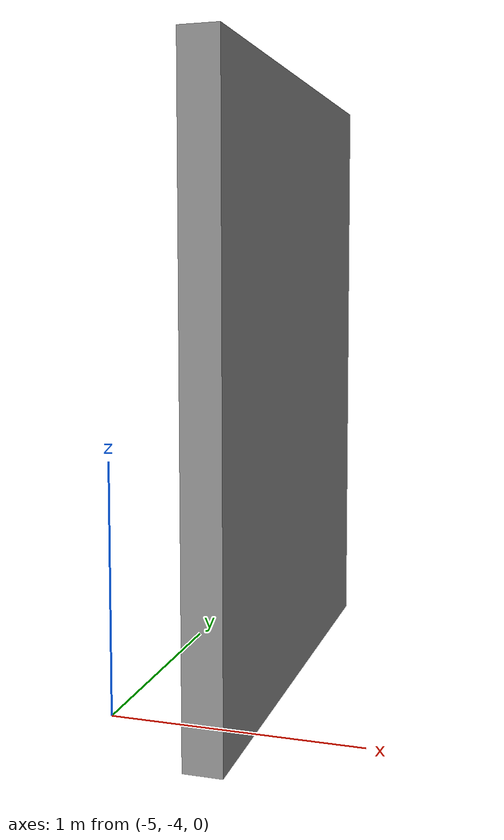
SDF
<?xml version='1.0'?>
<sdf version='1.7'>
  <model name='Coba'>
    <pose>-2.28418 -2.18901 0 0 -0 0</pose>
    <link name='Wall_35'>
      <collision name='Wall_35_Collision'>
        <geometry>
          <box>
            <size>2 0.15 2.5</size>
          </box>
        </geometry>
        <pose>0 0 1.25 0 -0 0</pose>
      </collision>
      <visual name='Wall_35_Visual'>
        <pose>0 0 1.25 0 -0 0</pose>
        <geometry>
          <box>
            <size>2 0.15 2.5</size>
          </box>
        </geometry>
        <material>
          <script>
            <uri>file://media/materials/scripts/gazebo.material</uri>
            <name>Gazebo/Grey</name>
          </script>
          <ambient>1 1 1 1</ambient>
        </material>
        <meta>
          <layer>0</layer>
        </meta>
      </visual>
      <pose>-2.20918 -1.18901 0 0 -0 1.5708</pose>
    </link>
    <static>1</static>
  </model>
</sdf>
